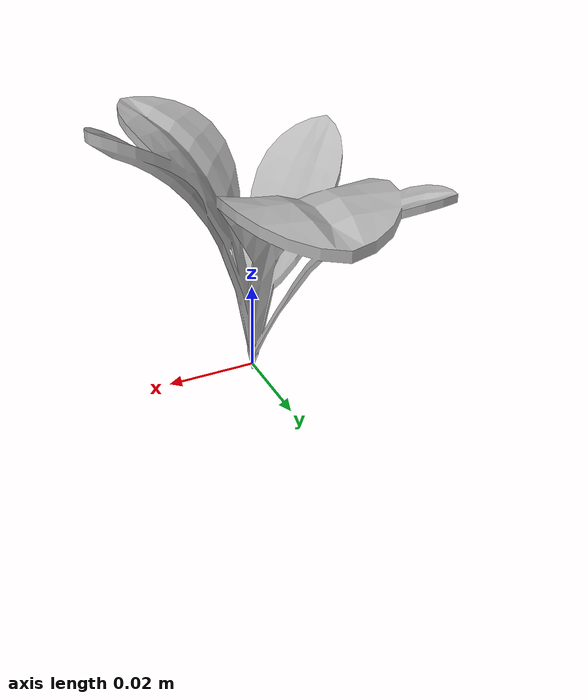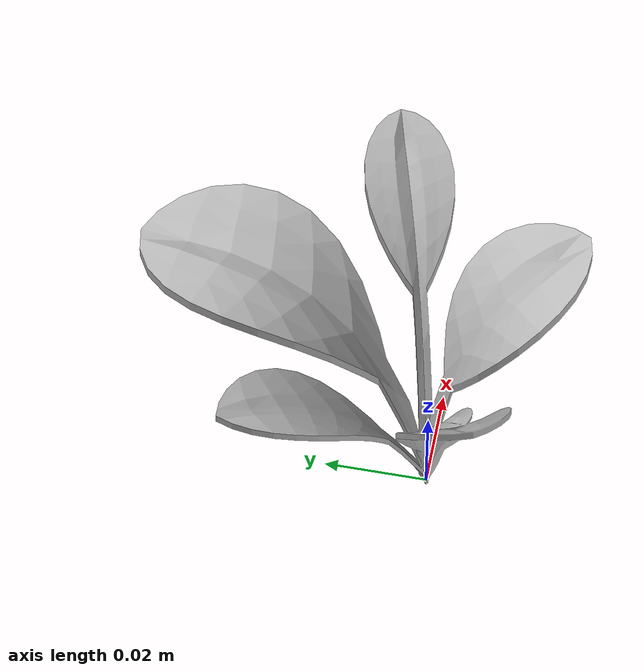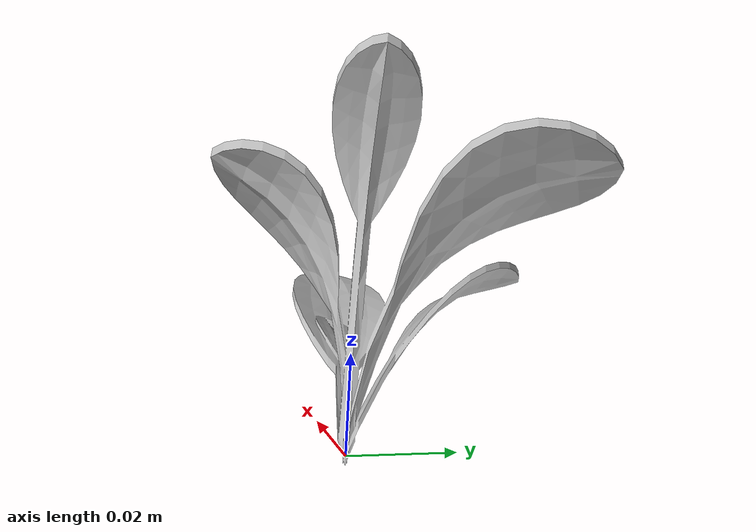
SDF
<sdf version="1.6">
  <model name="sugar_beet_48">
    <static>true</static>
    <link name="body">
      <visual name="visual">
        <geometry>
          <mesh>
            <uri>file:///sugar_beet_48/media/sugar_beet.dae</uri>
          </mesh>
        </geometry>
      </visual>
    </link>
  </model>
</sdf>
